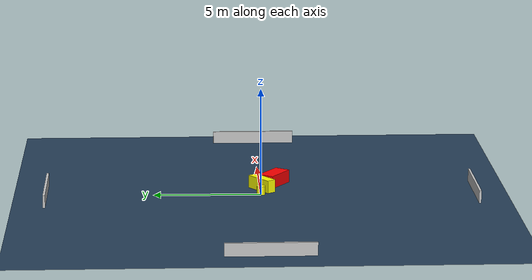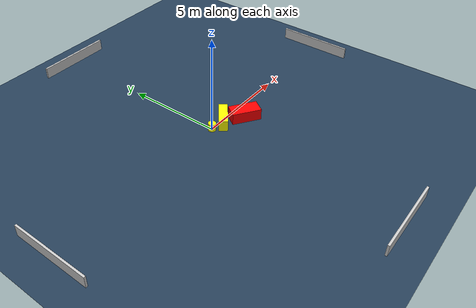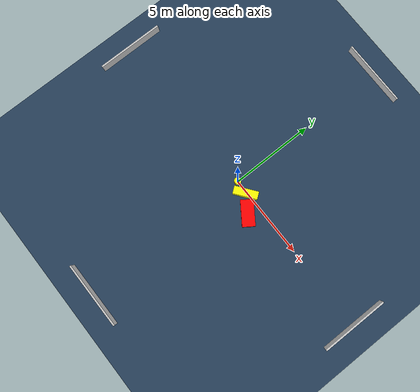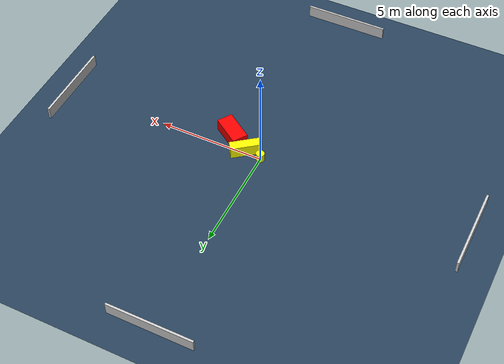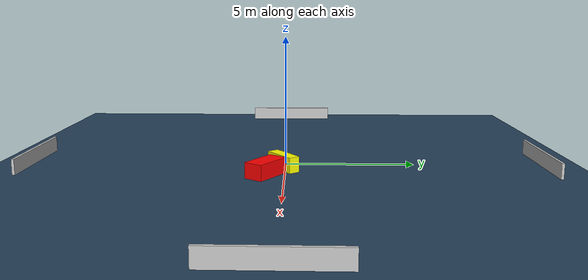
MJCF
<?xml version="1.0" ?>
<mujoco model="generated_environment">
  <option timestep="0.01" integrator="RK4" cone="elliptic"/>
  <default>
    <geom density="1"/>
  </default>
  <asset>
    <texture builtin="gradient" height="3072" name="skybox" rgb1="0.3 0.5 0.7" rgb2="0 0 0" type="skybox" width="512"/>
    <texture builtin="checker" height="300" name="groundplane" rgb1="0.2 0.3 0.4" rgb2="0.1 0.2 0.3" type="2d" width="300"/>
    <material name="groundplane" reflectance="0.2" texrepeat="5 5" texture="groundplane"/>
  </asset>
  <worldbody>
    <light dir="0 0 -1" directional="true" pos="0 0 1.5"/>
    <geom condim="3" friction="0.5 0.005 0.001" material="groundplane" name="floor" pos="0 0 0" size="0 0 0.05" type="plane"/>
    <body name="walls">
      <geom name="wall_1" condim="4" pos="-10.0 0.0 0.3" rgba="0.800000011920929 0.800000011920929 0.800000011920929 1.0" size="0.05 2.0 0.3" type="box"/>
      <geom name="wall_2" condim="4" pos="10.0 0.0 0.3" rgba="0.800000011920929 0.800000011920929 0.800000011920929 1.0" size="0.05 2.0 0.3" type="box"/>
      <geom name="wall_3" condim="4" pos="0.0 -10.0 0.3" rgba="0.800000011920929 0.800000011920929 0.800000011920929 1.0" size="2.0 0.05 0.3" type="box"/>
      <geom name="wall_4" condim="4" pos="0.0 10.0 0.3" rgba="0.800000011920929 0.800000011920929 0.800000011920929 1.0" size="2.0 0.05 0.3" type="box"/>
    </body>
    <body name="robot">
      <joint name="joint_x" type="slide" pos="0 0 0" axis="1 0 0"/>
      <joint name="joint_y" type="slide" pos="0 0 0" axis="0 1 0"/>
      <geom name="robot" type="cylinder" pos="0.0 0.0 0.2" size="0.2 0.2 0.0" mass="5.0" friction="1.0 0.005 0.0001" condim="4" rgba="1.0 1.0 0.0 1.0"/>
    </body>
    <body name="obstacle_1_movable">
      <geom name="obstacle_1_movable" condim="4" pos="0.805499645819385 -0.07540509510270602 0.3" euler="0 0 217.31717746577104" friction="0.0 0.005 0.001" rgba="1.0 1.0 0.0 1.0" size="0.7056072169907373 0.22516177921499111 0.3" type="box" mass="0.1"/>
      <joint type="free"/>
    </body>
    <body name="obstacle_2_static">
      <geom name="obstacle_2_static" condim="4" pos="1.7598727239697491 -0.6954869315555935 0.3" euler="0 0 325.55371509668385" friction="0.0 0.005 0.001" rgba="1.0 0.0 0.0 1.0" size="0.7516056796927515 0.37300032945032935 0.3" type="box"/>
    </body>
  </worldbody>
  <actuator>
    <motor name="actuator_x" joint="joint_x" gear="1" ctrlrange="-1 1"/>
    <motor name="actuator_y" joint="joint_y" gear="1" ctrlrange="-1 1"/>
  </actuator>
</mujoco>
